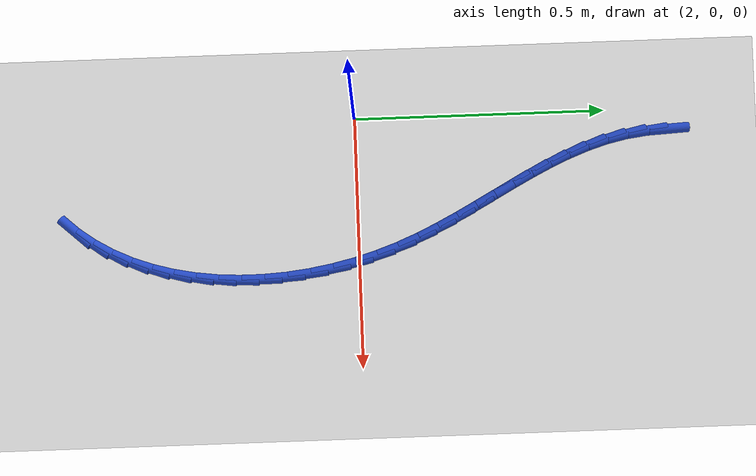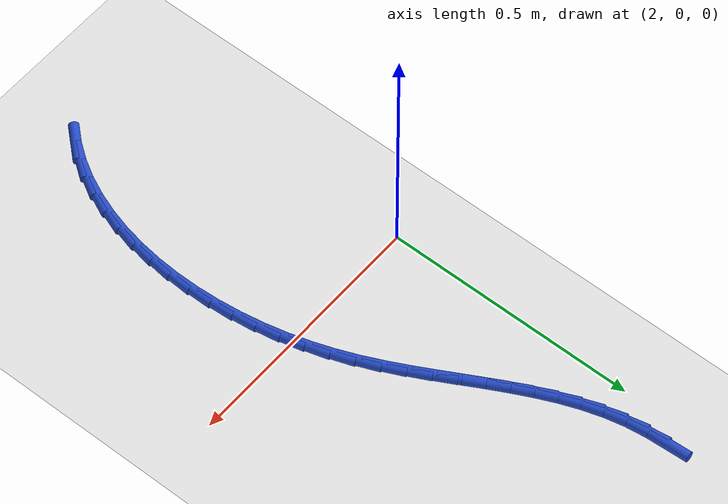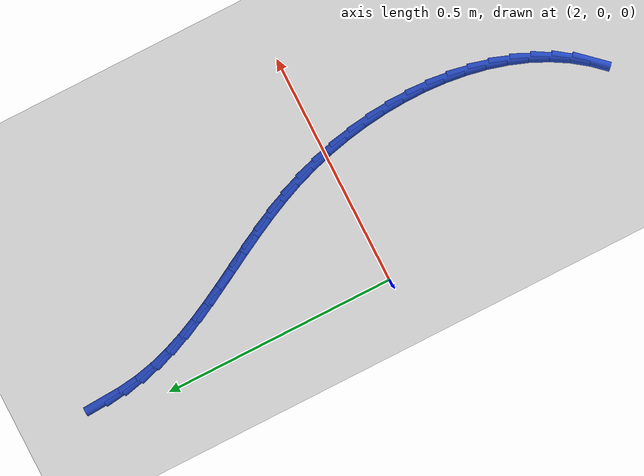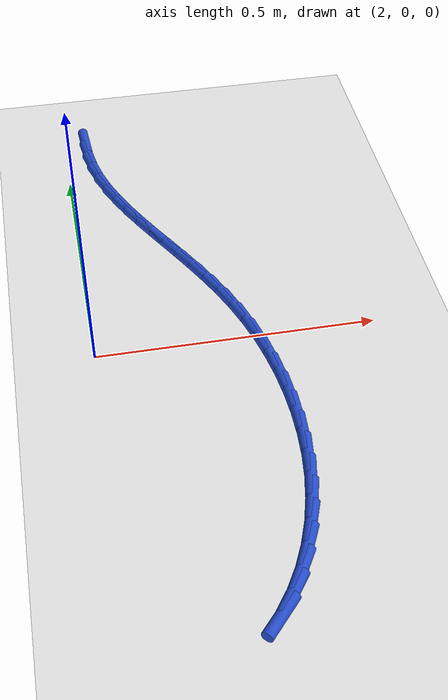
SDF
<sdf version="1.6">
 <world name="default">
  <model name="ground_plane">
   <static>1</static>
   <link name="link">
    <collision name="collision">
     <geometry><plane><normal>0 0 1</normal><size>100 100</size></plane></geometry>
     <surface><friction><ode><mu>100</mu><mu2>50</mu2></ode></friction></surface>
    </collision>
    <visual name="visual">
     <cast_shadows>0</cast_shadows>
     <geometry><plane><normal>0 0 1</normal><size>100 100</size></plane></geometry>
     <material>
      <script><uri>file://media/materials/scripts/gazebo.material</uri><name>Gazebo/WhiteGlow</name></script>
     </material>
    </visual>
   </link>
  </model>
  <model name="line">
   <link name="link_75">
    <pose>2.0430872510982763 0.6255566347815473 0.01 0 1.57 -1.5167439572859542</pose>
    <collision name="collision">
     <geometry><cylinder><radius>0.01</radius><length>0.08</length></cylinder></geometry>
    </collision>
    <visual name="visual">
     <material>
      <script><name>Gazebo/Blue</name><uri>file://media/materials/scripts/gazebo.material</uri></script>
     </material>
     <geometry><cylinder><radius>0.01</radius><length>0.08</length></cylinder></geometry>
    </visual>
   </link>
   <link name="link_76">
    <pose>2.045392593732852 0.582948011391702 0.01 0 1.57 -1.4398840844736198</pose>
    <collision name="collision">
     <geometry><cylinder><radius>0.01</radius><length>0.08</length></cylinder></geometry>
    </collision>
    <visual name="visual">
     <material>
      <script><name>Gazebo/Blue</name><uri>file://media/materials/scripts/gazebo.material</uri></script>
     </material>
     <geometry><cylinder><radius>0.01</radius><length>0.08</length></cylinder></geometry>
    </visual>
   </link>
   <link name="link_77">
    <pose>2.0508587106441674 0.5414327569881692 0.01 0 1.57 -1.3495234273014156</pose>
    <collision name="collision">
     <geometry><cylinder><radius>0.01</radius><length>0.08</length></cylinder></geometry>
    </collision>
    <visual name="visual">
     <material>
      <script><name>Gazebo/Blue</name><uri>file://media/materials/scripts/gazebo.material</uri></script>
     </material>
     <geometry><cylinder><radius>0.01</radius><length>0.08</length></cylinder></geometry>
    </visual>
   </link>
   <link name="link_78">
    <pose>2.0599260330493103 0.5011257275315094 0.01 0 1.57 -1.2694675093479777</pose>
    <collision name="collision">
     <geometry><cylinder><radius>0.01</radius><length>0.08</length></cylinder></geometry>
    </collision>
    <visual name="visual">
     <material>
      <script><name>Gazebo/Blue</name><uri>file://media/materials/scripts/gazebo.material</uri></script>
     </material>
     <geometry><cylinder><radius>0.01</radius><length>0.08</length></cylinder></geometry>
    </visual>
   </link>
   <link name="link_79">
    <pose>2.0721427137337862 0.46181761000573485 0.01 0 1.57 -1.2022416108094847</pose>
    <collision name="collision">
     <geometry><cylinder><radius>0.01</radius><length>0.08</length></cylinder></geometry>
    </collision>
    <visual name="visual">
     <material>
      <script><name>Gazebo/Blue</name><uri>file://media/materials/scripts/gazebo.material</uri></script>
     </material>
     <geometry><cylinder><radius>0.01</radius><length>0.08</length></cylinder></geometry>
    </visual>
   </link>
   <link name="link_80">
    <pose>2.087023329836767 0.42328689320366225 0.01 0 1.57 -1.1485895569583218</pose>
    <collision name="collision">
     <geometry><cylinder><radius>0.01</radius><length>0.08</length></cylinder></geometry>
    </collision>
    <visual name="visual">
     <material>
      <script><name>Gazebo/Blue</name><uri>file://media/materials/scripts/gazebo.material</uri></script>
     </material>
     <geometry><cylinder><radius>0.01</radius><length>0.08</length></cylinder></geometry>
    </visual>
   </link>
   <link name="link_81">
    <pose>2.104082458497425 0.385312065918109 0.01 0 1.57 -1.108595146155567</pose>
    <collision name="collision">
     <geometry><cylinder><radius>0.01</radius><length>0.08</length></cylinder></geometry>
    </collision>
    <visual name="visual">
     <material>
      <script><name>Gazebo/Blue</name><uri>file://media/materials/scripts/gazebo.material</uri></script>
     </material>
     <geometry><cylinder><radius>0.01</radius><length>0.08</length></cylinder></geometry>
    </visual>
   </link>
   <link name="link_82">
    <pose>2.1228346768549327 0.3476716169418919 0.01 0 1.57 -1.0819770920410037</pose>
    <collision name="collision">
     <geometry><cylinder><radius>0.01</radius><length>0.08</length></cylinder></geometry>
    </collision>
    <visual name="visual">
     <material>
      <script><name>Gazebo/Blue</name><uri>file://media/materials/scripts/gazebo.material</uri></script>
     </material>
     <geometry><cylinder><radius>0.01</radius><length>0.08</length></cylinder></geometry>
    </visual>
   </link>
   <link name="link_83">
    <pose>2.142794562048462 0.3101440350678275 0.01 0 1.57 -1.0683161971109423</pose>
    <collision name="collision">
     <geometry><cylinder><radius>0.01</radius><length>0.08</length></cylinder></geometry>
    </collision>
    <visual name="visual">
     <material>
      <script><name>Gazebo/Blue</name><uri>file://media/materials/scripts/gazebo.material</uri></script>
     </material>
     <geometry><cylinder><radius>0.01</radius><length>0.08</length></cylinder></geometry>
    </visual>
   </link>
   <link name="link_84">
    <pose>2.1634766912171854 0.27250780908873323 0.01 0 1.57 -1.067196309712087</pose>
    <collision name="collision">
     <geometry><cylinder><radius>0.01</radius><length>0.08</length></cylinder></geometry>
    </collision>
    <visual name="visual">
     <material>
      <script><name>Gazebo/Blue</name><uri>file://media/materials/scripts/gazebo.material</uri></script>
     </material>
     <geometry><cylinder><radius>0.01</radius><length>0.08</length></cylinder></geometry>
    </visual>
   </link>
   <link name="link_85">
    <pose>2.1843956415002763 0.23454142779742548 0.01 0 1.57 -1.0782676707081533</pose>
    <collision name="collision">
     <geometry><cylinder><radius>0.01</radius><length>0.08</length></cylinder></geometry>
    </collision>
    <visual name="visual">
     <material>
      <script><name>Gazebo/Blue</name><uri>file://media/materials/scripts/gazebo.material</uri></script>
     </material>
     <geometry><cylinder><radius>0.01</radius><length>0.08</length></cylinder></geometry>
    </visual>
   </link>
   <link name="link_86">
    <pose>2.2050659900369065 0.19602337998672187 0.01 0 1.57 -1.1012471465318383</pose>
    <collision name="collision">
     <geometry><cylinder><radius>0.01</radius><length>0.08</length></cylinder></geometry>
    </collision>
    <visual name="visual">
     <material>
      <script><name>Gazebo/Blue</name><uri>file://media/materials/scripts/gazebo.material</uri></script>
     </material>
     <geometry><cylinder><radius>0.01</radius><length>0.08</length></cylinder></geometry>
    </visual>
   </link>
   <link name="link_87">
    <pose>2.225002313966249 0.15673215444943892 0.01 0 1.57 -1.135866761905109</pose>
    <collision name="collision">
     <geometry><cylinder><radius>0.01</radius><length>0.08</length></cylinder></geometry>
    </collision>
    <visual name="visual">
     <material>
      <script><name>Gazebo/Blue</name><uri>file://media/materials/scripts/gazebo.material</uri></script>
     </material>
     <geometry><cylinder><radius>0.01</radius><length>0.08</length></cylinder></geometry>
    </visual>
   </link>
   <link name="link_88">
    <pose>2.2437191904274743 0.11644623997839301 0.01 0 1.57 -1.1817787387800038</pose>
    <collision name="collision">
     <geometry><cylinder><radius>0.01</radius><length>0.08</length></cylinder></geometry>
    </collision>
    <visual name="visual">
     <material>
      <script><name>Gazebo/Blue</name><uri>file://media/materials/scripts/gazebo.material</uri></script>
     </material>
     <geometry><cylinder><radius>0.01</radius><length>0.08</length></cylinder></geometry>
    </visual>
   </link>
   <link name="link_89">
    <pose>2.2607311965597567 0.0749441253664021 0.01 0 1.57 -1.2366677750697714</pose>
    <collision name="collision">
     <geometry><cylinder><radius>0.01</radius><length>0.08</length></cylinder></geometry>
    </collision>
    <visual name="visual">
     <material>
      <script><name>Gazebo/Blue</name><uri>file://media/materials/scripts/gazebo.material</uri></script>
     </material>
     <geometry><cylinder><radius>0.01</radius><length>0.08</length></cylinder></geometry>
    </visual>
   </link>
   <link name="link_90">
    <pose>2.2756119611845125 0.03207790996420405 0.01 0 1.57 -1.2922902803362595</pose>
    <collision name="collision">
     <geometry><cylinder><radius>0.01</radius><length>0.08</length></cylinder></geometry>
    </collision>
    <visual name="visual">
     <material>
      <script><name>Gazebo/Blue</name><uri>file://media/materials/scripts/gazebo.material</uri></script>
     </material>
     <geometry><cylinder><radius>0.01</radius><length>0.08</length></cylinder></geometry>
    </visual>
   </link>
   <link name="link_91">
    <pose>2.288205119616778 -0.011963731730360975 0.01 0 1.57 -1.3470141802572055</pose>
    <collision name="collision">
     <geometry><cylinder><radius>0.01</radius><length>0.08</length></cylinder></geometry>
    </collision>
    <visual name="visual">
     <material>
      <script><name>Gazebo/Blue</name><uri>file://media/materials/scripts/gazebo.material</uri></script>
     </material>
     <geometry><cylinder><radius>0.01</radius><length>0.08</length></cylinder></geometry>
    </visual>
   </link>
   <link name="link_92">
    <pose>2.2984314339435548 -0.056895983255346054 0.01 0 1.57 -1.4015787827426558</pose>
    <collision name="collision">
     <geometry><cylinder><radius>0.01</radius><length>0.08</length></cylinder></geometry>
    </collision>
    <visual name="visual">
     <material>
      <script><name>Gazebo/Blue</name><uri>file://media/materials/scripts/gazebo.material</uri></script>
     </material>
     <geometry><cylinder><radius>0.01</radius><length>0.08</length></cylinder></geometry>
    </visual>
   </link>
   <link name="link_93">
    <pose>2.306211672228948 -0.1024340206980696 0.01 0 1.57 -1.4567050960142591</pose>
    <collision name="collision">
     <geometry><cylinder><radius>0.01</radius><length>0.08</length></cylinder></geometry>
    </collision>
    <visual name="visual">
     <material>
      <script><name>Gazebo/Blue</name><uri>file://media/materials/scripts/gazebo.material</uri></script>
     </material>
     <geometry><cylinder><radius>0.01</radius><length>0.08</length></cylinder></geometry>
    </visual>
   </link>
   <link name="link_94">
    <pose>2.3114666025370654 -0.14829302014585277 0.01 0 1.57 -1.5131115668842599</pose>
    <collision name="collision">
     <geometry><cylinder><radius>0.01</radius><length>0.08</length></cylinder></geometry>
    </collision>
    <visual name="visual">
     <material>
      <script><name>Gazebo/Blue</name><uri>file://media/materials/scripts/gazebo.material</uri></script>
     </material>
     <geometry><cylinder><radius>0.01</radius><length>0.08</length></cylinder></geometry>
    </visual>
   </link>
   <link name="link_95">
    <pose>2.314116992932015 -0.19418815768601602 0.01 0 1.57 1.570065022456855</pose>
    <collision name="collision">
     <geometry><cylinder><radius>0.01</radius><length>0.08</length></cylinder></geometry>
    </collision>
    <visual name="visual">
     <material>
      <script><name>Gazebo/Blue</name><uri>file://media/materials/scripts/gazebo.material</uri></script>
     </material>
     <geometry><cylinder><radius>0.01</radius><length>0.08</length></cylinder></geometry>
    </visual>
   </link>
   <link name="link_96">
    <pose>2.3140836114779053 -0.2398346094058795 0.01 0 1.57 1.5088892147848</pose>
    <collision name="collision">
     <geometry><cylinder><radius>0.01</radius><length>0.08</length></cylinder></geometry>
    </collision>
    <visual name="visual">
     <material>
      <script><name>Gazebo/Blue</name><uri>file://media/materials/scripts/gazebo.material</uri></script>
     </material>
     <geometry><cylinder><radius>0.01</radius><length>0.08</length></cylinder></geometry>
    </visual>
   </link>
   <link name="link_97">
    <pose>2.311287226238842 -0.28494755139276345 0.01 0 1.57 1.4441791984803496</pose>
    <collision name="collision">
     <geometry><cylinder><radius>0.01</radius><length>0.08</length></cylinder></geometry>
    </collision>
    <visual name="visual">
     <material>
      <script><name>Gazebo/Blue</name><uri>file://media/materials/scripts/gazebo.material</uri></script>
     </material>
     <geometry><cylinder><radius>0.01</radius><length>0.08</length></cylinder></geometry>
    </visual>
   </link>
   <link name="link_98">
    <pose>2.305648605278933 -0.32924215973398907 0.01 0 1.57 1.3751423130542864</pose>
    <collision name="collision">
     <geometry><cylinder><radius>0.01</radius><length>0.08</length></cylinder></geometry>
    </collision>
    <visual name="visual">
     <material>
      <script><name>Gazebo/Blue</name><uri>file://media/materials/scripts/gazebo.material</uri></script>
     </material>
     <geometry><cylinder><radius>0.01</radius><length>0.08</length></cylinder></geometry>
    </visual>
   </link>
   <link name="link_99">
    <pose>2.2970885166622868 -0.3724336105168752 0.01 0 1.57 1.3009888034800459</pose>
    <collision name="collision">
     <geometry><cylinder><radius>0.01</radius><length>0.08</length></cylinder></geometry>
    </collision>
    <visual name="visual">
     <material>
      <script><name>Gazebo/Blue</name><uri>file://media/materials/scripts/gazebo.material</uri></script>
     </material>
     <geometry><cylinder><radius>0.01</radius><length>0.08</length></cylinder></geometry>
    </visual>
   </link>
   <link name="link_100">
    <pose>2.2855277284530087 -0.41423707982874247 0.01 0 1.57 1.220974801173902</pose>
    <collision name="collision">
     <geometry><cylinder><radius>0.01</radius><length>0.08</length></cylinder></geometry>
    </collision>
    <visual name="visual">
     <material>
      <script><name>Gazebo/Blue</name><uri>file://media/materials/scripts/gazebo.material</uri></script>
     </material>
     <geometry><cylinder><radius>0.01</radius><length>0.08</length></cylinder></geometry>
    </visual>
   </link>
   <link name="link_101">
    <pose>2.2708870087152078 -0.4543677437569115 0.01 0 1.57 1.1344746689911773</pose>
    <collision name="collision">
     <geometry><cylinder><radius>0.01</radius><length>0.08</length></cylinder></geometry>
    </collision>
    <visual name="visual">
     <material>
      <script><name>Gazebo/Blue</name><uri>file://media/materials/scripts/gazebo.material</uri></script>
     </material>
     <geometry><cylinder><radius>0.01</radius><length>0.08</length></cylinder></geometry>
    </visual>
   </link>
   <link name="link_102">
    <pose>2.2530871255129914 -0.4925407783887026 0.01 0 1.57 1.0410876886177214</pose>
    <collision name="collision">
     <geometry><cylinder><radius>0.01</radius><length>0.08</length></cylinder></geometry>
    </collision>
    <visual name="visual">
     <material>
      <script><name>Gazebo/Blue</name><uri>file://media/materials/scripts/gazebo.material</uri></script>
     </material>
     <geometry><cylinder><radius>0.01</radius><length>0.08</length></cylinder></geometry>
    </visual>
   </link>
   <link name="link_103">
    <pose>2.232048846910466 -0.5284713598114366 0.01 0 1.57 0.9407755149260694</pose>
    <collision name="collision">
     <geometry><cylinder><radius>0.01</radius><length>0.08</length></cylinder></geometry>
    </collision>
    <visual name="visual">
     <material>
      <script><name>Gazebo/Blue</name><uri>file://media/materials/scripts/gazebo.material</uri></script>
     </material>
     <geometry><cylinder><radius>0.01</radius><length>0.08</length></cylinder></geometry>
    </visual>
   </link>
   <link name="link_104">
    <pose>2.2076929409717394 -0.5618746641124324 0.01 0 1.57 0.8366129884798346</pose>
    <collision name="collision">
     <geometry><cylinder><radius>0.01</radius><length>0.08</length></cylinder></geometry>
    </collision>
    <visual name="visual">
     <material>
      <script><name>Gazebo/Blue</name><uri>file://media/materials/scripts/gazebo.material</uri></script>
     </material>
     <geometry><cylinder><radius>0.01</radius><length>0.08</length></cylinder></geometry>
    </visual>
   </link>
  </model>
 </world>
</sdf>
